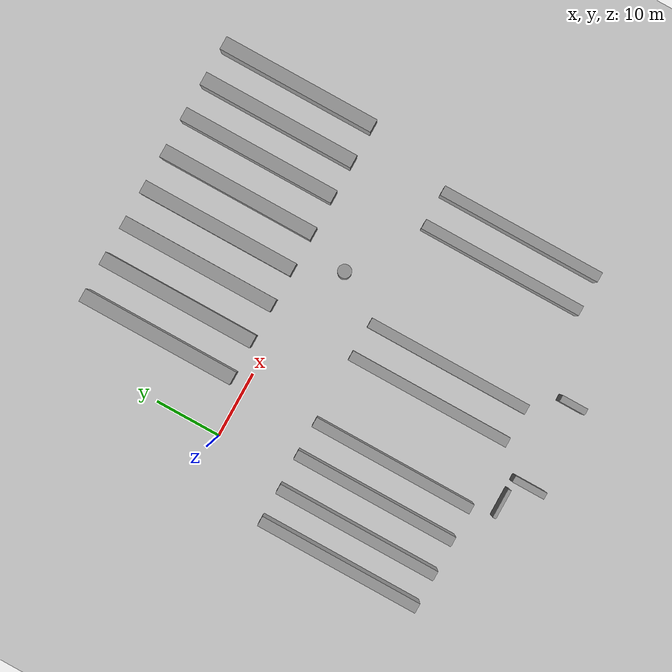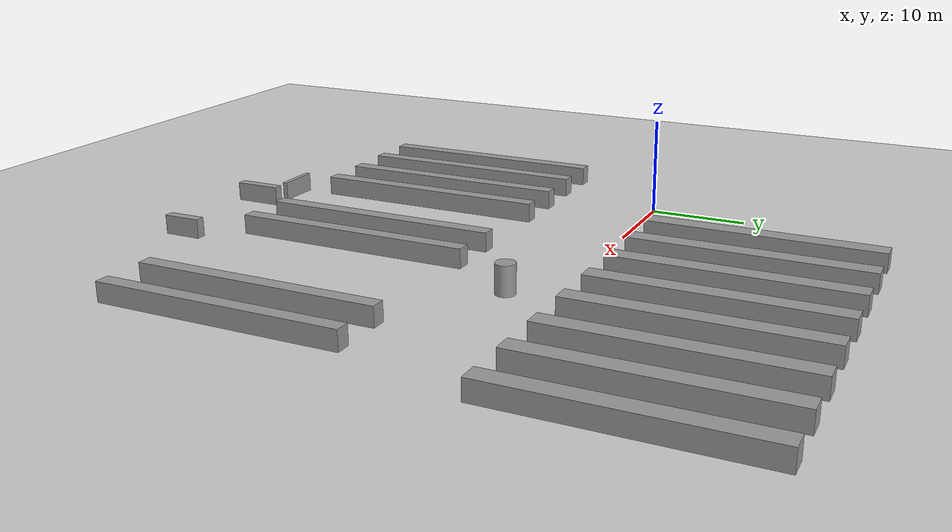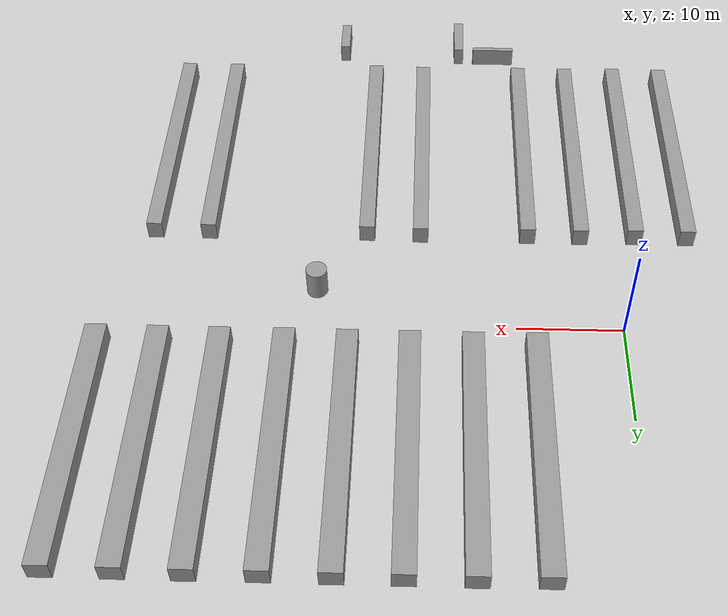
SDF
<sdf version="1.6">
 <world name="default">
  <model name="ground_plane">
   <static>1</static>
   <link name="link">
    <collision name="collision">
     <geometry><plane><normal>0 0 1</normal><size>120 120</size></plane></geometry>
     <surface>
      <contact><collide_bitmask>65535</collide_bitmask></contact>
      <friction><ode><mu>100</mu><mu2>50</mu2></ode></friction>
     </surface>
    </collision>
    <visual name="visual">
     <cast_shadows>0</cast_shadows>
     <geometry><plane><normal>0 0 1</normal><size>120 120</size></plane></geometry>
     <material>
      <script><uri>file://media/materials/scripts/gazebo.material</uri><name>Gazebo/Grey</name></script>
     </material>
    </visual>
   </link>
  </model>
  <model name="box8">
   <link name="link">
    <inertial>
     <mass>50</mass>
     <inertia><ixx>8.33333</ixx><ixy>0</ixy><ixz>0</ixz><iyy>8.33333</iyy><iyz>0</iyz><izz>8.33333</izz></inertia>
    </inertial>
    <pose>-0.565276 -1.46825 0.5 0 -0 0</pose>
    <gravity>0</gravity>
    <visual name="visual">
     <geometry><box><size>4.5 0.5 2</size></box></geometry>
     <material>
      <script><name>Gazebo/Grey</name><uri>file://media/materials/scripts/gazebo.material</uri></script>
      <shader type="pixel"><normal_map>__default__</normal_map></shader>
      <ambient>0.3 0.3 0.3 1</ambient>
      <diffuse>0.7 0.7 0.7 1</diffuse>
      <specular>0.01 0.01 0.01 1</specular>
      <emissive>0 0 0 1</emissive>
     </material>
    </visual>
    <collision name="collision">
     <geometry><box><size>4.5 0.5 2</size></box></geometry>
     <surface>
      <friction>
       <ode><mu>1</mu><mu2>1</mu2><fdir1>0 0 0</fdir1><slip1>0</slip1><slip2>0</slip2></ode>
       <torsional>
        <coefficient>1</coefficient>
        <patch_radius>0</patch_radius>
        <surface_radius>0</surface_radius>
        <use_patch_radius>1</use_patch_radius>
        <ode><slip>0</slip></ode>
       </torsional>
      </friction>
      <bounce><restitution_coefficient>0</restitution_coefficient><threshold>1e+06</threshold></bounce>
      <contact>
       <collide_without_contact>0</collide_without_contact>
       <collide_without_contact_bitmask>1</collide_without_contact_bitmask>
       <collide_bitmask>1</collide_bitmask>
       <ode>
        <soft_cfm>0</soft_cfm>
        <soft_erp>0.2</soft_erp>
        <kp>1e+13</kp>
        <kd>1</kd>
        <max_vel>0.01</max_vel>
        <min_depth>0</min_depth>
       </ode>
       <bullet>
        <split_impulse>1</split_impulse>
        <split_impulse_penetration_threshold>-0.01</split_impulse_penetration_threshold>
        <soft_cfm>0</soft_cfm>
        <soft_erp>0.2</soft_erp>
        <kp>1e+13</kp>
        <kd>1</kd>
       </bullet>
      </contact>
     </surface>
    </collision>
   </link>
   <static>0</static>
   <pose>11.7716 -37.6608 0.5 0 -0 0</pose>
  </model>
  <model name="box9">
   <link name="link">
    <inertial>
     <mass>50</mass>
     <inertia><ixx>8.33333</ixx><ixy>0</ixy><ixz>0</ixz><iyy>8.33333</iyy><iyz>0</iyz><izz>8.33333</izz></inertia>
    </inertial>
    <pose>-1.88715 -4.10766 0.5 0 -0 0</pose>
    <gravity>0</gravity>
    <visual name="visual">
     <geometry><box><size>1 5 2</size></box></geometry>
     <material>
      <script><name>Gazebo/Grey</name><uri>file://media/materials/scripts/gazebo.material</uri></script>
      <shader type="pixel"><normal_map>__default__</normal_map></shader>
      <ambient>0.3 0.3 0.3 1</ambient>
      <diffuse>0.7 0.7 0.7 1</diffuse>
      <specular>0.01 0.01 0.01 1</specular>
      <emissive>0 0 0 1</emissive>
     </material>
    </visual>
    <collision name="collision">
     <geometry><box><size>1 5 2</size></box></geometry>
     <surface>
      <friction>
       <ode><mu>1</mu><mu2>1</mu2><fdir1>0 0 0</fdir1><slip1>0</slip1><slip2>0</slip2></ode>
       <torsional>
        <coefficient>1</coefficient>
        <patch_radius>0</patch_radius>
        <surface_radius>0</surface_radius>
        <use_patch_radius>1</use_patch_radius>
        <ode><slip>0</slip></ode>
       </torsional>
      </friction>
      <bounce><restitution_coefficient>0</restitution_coefficient><threshold>1e+06</threshold></bounce>
      <contact>
       <collide_without_contact>0</collide_without_contact>
       <collide_without_contact_bitmask>1</collide_without_contact_bitmask>
       <collide_bitmask>1</collide_bitmask>
       <ode>
        <soft_cfm>0</soft_cfm>
        <soft_erp>0.2</soft_erp>
        <kp>1e+13</kp>
        <kd>1</kd>
        <max_vel>0.01</max_vel>
        <min_depth>0</min_depth>
       </ode>
       <bullet>
        <split_impulse>1</split_impulse>
        <split_impulse_penetration_threshold>-0.01</split_impulse_penetration_threshold>
        <soft_cfm>0</soft_cfm>
        <soft_erp>0.2</soft_erp>
        <kp>1e+13</kp>
        <kd>1</kd>
       </bullet>
      </contact>
     </surface>
    </collision>
   </link>
   <static>0</static>
   <pose>16.9596 -37.2833 0.5 0 -0 0</pose>
  </model>
  <model name="box10">
   <link name="link">
    <inertial>
     <mass>50</mass>
     <inertia><ixx>8.33333</ixx><ixy>0</ixy><ixz>0</ixz><iyy>8.33333</iyy><iyz>0</iyz><izz>8.33333</izz></inertia>
    </inertial>
    <pose>1.71263 -3.72257 0.5 0 -0 0</pose>
    <gravity>0</gravity>
    <visual name="visual">
     <geometry><box><size>1 4 2</size></box></geometry>
     <material>
      <script><name>Gazebo/Grey</name><uri>file://media/materials/scripts/gazebo.material</uri></script>
      <shader type="pixel"><normal_map>__default__</normal_map></shader>
      <ambient>0.3 0.3 0.3 1</ambient>
      <diffuse>0.7 0.7 0.7 1</diffuse>
      <specular>0.01 0.01 0.01 1</specular>
      <emissive>0 0 0 1</emissive>
     </material>
    </visual>
    <collision name="collision">
     <geometry><box><size>1 4 2</size></box></geometry>
     <surface>
      <friction>
       <ode><mu>1</mu><mu2>1</mu2><fdir1>0 0 0</fdir1><slip1>0</slip1><slip2>0</slip2></ode>
       <torsional>
        <coefficient>1</coefficient>
        <patch_radius>0</patch_radius>
        <surface_radius>0</surface_radius>
        <use_patch_radius>1</use_patch_radius>
        <ode><slip>0</slip></ode>
       </torsional>
      </friction>
      <bounce><restitution_coefficient>0</restitution_coefficient><threshold>1e+06</threshold></bounce>
      <contact>
       <collide_without_contact>0</collide_without_contact>
       <collide_without_contact_bitmask>1</collide_without_contact_bitmask>
       <collide_bitmask>1</collide_bitmask>
       <ode>
        <soft_cfm>0</soft_cfm>
        <soft_erp>0.2</soft_erp>
        <kp>1e+13</kp>
        <kd>1</kd>
        <max_vel>0.01</max_vel>
        <min_depth>0</min_depth>
       </ode>
       <bullet>
        <split_impulse>1</split_impulse>
        <split_impulse_penetration_threshold>-0.01</split_impulse_penetration_threshold>
        <soft_cfm>0</soft_cfm>
        <soft_erp>0.2</soft_erp>
        <kp>1e+13</kp>
        <kd>1</kd>
       </bullet>
      </contact>
     </surface>
    </collision>
   </link>
   <static>0</static>
   <pose>26.3188 -37.4827 0.5 0 -0 0</pose>
  </model>
  <model name="box30">
   <link name="link">
    <inertial>
     <mass>50</mass>
     <inertia><ixx>8.33333</ixx><ixy>0</ixy><ixz>0</ixz><iyy>8.33333</iyy><iyz>0</iyz><izz>8.33333</izz></inertia>
    </inertial>
    <pose>5.70963 -14.2059 0.5 0 -0 0</pose>
    <gravity>0</gravity>
    <visual name="visual">
     <geometry><box><size>2 24 2</size></box></geometry>
     <material>
      <script><name>Gazebo/Grey</name><uri>file://media/materials/scripts/gazebo.material</uri></script>
      <shader type="pixel"><normal_map>__default__</normal_map></shader>
      <ambient>0.3 0.3 0.3 1</ambient>
      <diffuse>0.7 0.7 0.7 1</diffuse>
      <specular>0.01 0.01 0.01 1</specular>
      <emissive>0 0 0 1</emissive>
     </material>
    </visual>
    <collision name="collision">
     <geometry><box><size>2 24 2</size></box></geometry>
     <surface>
      <friction>
       <ode><mu>1</mu><mu2>1</mu2><fdir1>0 0 0</fdir1><slip1>0</slip1><slip2>0</slip2></ode>
       <torsional>
        <coefficient>1</coefficient>
        <patch_radius>0</patch_radius>
        <surface_radius>0</surface_radius>
        <use_patch_radius>1</use_patch_radius>
        <ode><slip>0</slip></ode>
       </torsional>
      </friction>
      <bounce><restitution_coefficient>0</restitution_coefficient><threshold>1e+06</threshold></bounce>
      <contact>
       <collide_without_contact>0</collide_without_contact>
       <collide_without_contact_bitmask>1</collide_without_contact_bitmask>
       <collide_bitmask>1</collide_bitmask>
       <ode>
        <soft_cfm>0</soft_cfm>
        <soft_erp>0.2</soft_erp>
        <kp>1e+13</kp>
        <kd>1</kd>
        <max_vel>0.01</max_vel>
        <min_depth>0</min_depth>
       </ode>
       <bullet>
        <split_impulse>1</split_impulse>
        <split_impulse_penetration_threshold>-0.01</split_impulse_penetration_threshold>
        <soft_cfm>0</soft_cfm>
        <soft_erp>0.2</soft_erp>
        <kp>1e+13</kp>
        <kd>1</kd>
       </bullet>
      </contact>
     </surface>
    </collision>
   </link>
   <static>0</static>
   <pose>2.58309 28.1874 0.5 0 -0 0</pose>
  </model>
  <model name="box31">
   <link name="link">
    <inertial>
     <mass>50</mass>
     <inertia><ixx>8.33333</ixx><ixy>0</ixy><ixz>0</ixz><iyy>8.33333</iyy><iyz>0</iyz><izz>8.33333</izz></inertia>
    </inertial>
    <pose>5.70963 -14.2059 0.5 0 -0 0</pose>
    <gravity>0</gravity>
    <visual name="visual">
     <geometry><box><size>2 24 2</size></box></geometry>
     <material>
      <script><name>Gazebo/Grey</name><uri>file://media/materials/scripts/gazebo.material</uri></script>
      <shader type="pixel"><normal_map>__default__</normal_map></shader>
      <ambient>0.3 0.3 0.3 1</ambient>
      <diffuse>0.7 0.7 0.7 1</diffuse>
      <specular>0.01 0.01 0.01 1</specular>
      <emissive>0 0 0 1</emissive>
     </material>
    </visual>
    <collision name="collision">
     <geometry><box><size>2 24 2</size></box></geometry>
     <surface>
      <friction>
       <ode><mu>1</mu><mu2>1</mu2><fdir1>0 0 0</fdir1><slip1>0</slip1><slip2>0</slip2></ode>
       <torsional>
        <coefficient>1</coefficient>
        <patch_radius>0</patch_radius>
        <surface_radius>0</surface_radius>
        <use_patch_radius>1</use_patch_radius>
        <ode><slip>0</slip></ode>
       </torsional>
      </friction>
      <bounce><restitution_coefficient>0</restitution_coefficient><threshold>1e+06</threshold></bounce>
      <contact>
       <collide_without_contact>0</collide_without_contact>
       <collide_without_contact_bitmask>1</collide_without_contact_bitmask>
       <collide_bitmask>1</collide_bitmask>
       <ode>
        <soft_cfm>0</soft_cfm>
        <soft_erp>0.2</soft_erp>
        <kp>1e+13</kp>
        <kd>1</kd>
        <max_vel>0.01</max_vel>
        <min_depth>0</min_depth>
       </ode>
       <bullet>
        <split_impulse>1</split_impulse>
        <split_impulse_penetration_threshold>-0.01</split_impulse_penetration_threshold>
        <soft_cfm>0</soft_cfm>
        <soft_erp>0.2</soft_erp>
        <kp>1e+13</kp>
        <kd>1</kd>
       </bullet>
      </contact>
     </surface>
    </collision>
   </link>
   <static>0</static>
   <pose>8.38957 28.2413 0.5 0 -0 0</pose>
  </model>
  <model name="box32">
   <link name="link">
    <inertial>
     <mass>50</mass>
     <inertia><ixx>8.33333</ixx><ixy>0</ixy><ixz>0</ixz><iyy>8.33333</iyy><iyz>0</iyz><izz>8.33333</izz></inertia>
    </inertial>
    <pose>5.70963 -14.2059 0.5 0 -0 0</pose>
    <gravity>0</gravity>
    <visual name="visual">
     <geometry><box><size>2 24 2</size></box></geometry>
     <material>
      <script><name>Gazebo/Grey</name><uri>file://media/materials/scripts/gazebo.material</uri></script>
      <shader type="pixel"><normal_map>__default__</normal_map></shader>
      <ambient>0.3 0.3 0.3 1</ambient>
      <diffuse>0.7 0.7 0.7 1</diffuse>
      <specular>0.01 0.01 0.01 1</specular>
      <emissive>0 0 0 1</emissive>
     </material>
    </visual>
    <collision name="collision">
     <geometry><box><size>2 24 2</size></box></geometry>
     <surface>
      <friction>
       <ode><mu>1</mu><mu2>1</mu2><fdir1>0 0 0</fdir1><slip1>0</slip1><slip2>0</slip2></ode>
       <torsional>
        <coefficient>1</coefficient>
        <patch_radius>0</patch_radius>
        <surface_radius>0</surface_radius>
        <use_patch_radius>1</use_patch_radius>
        <ode><slip>0</slip></ode>
       </torsional>
      </friction>
      <bounce><restitution_coefficient>0</restitution_coefficient><threshold>1e+06</threshold></bounce>
      <contact>
       <collide_without_contact>0</collide_without_contact>
       <collide_without_contact_bitmask>1</collide_without_contact_bitmask>
       <collide_bitmask>1</collide_bitmask>
       <ode>
        <soft_cfm>0</soft_cfm>
        <soft_erp>0.2</soft_erp>
        <kp>1e+13</kp>
        <kd>1</kd>
        <max_vel>0.01</max_vel>
        <min_depth>0</min_depth>
       </ode>
       <bullet>
        <split_impulse>1</split_impulse>
        <split_impulse_penetration_threshold>-0.01</split_impulse_penetration_threshold>
        <soft_cfm>0</soft_cfm>
        <soft_erp>0.2</soft_erp>
        <kp>1e+13</kp>
        <kd>1</kd>
       </bullet>
      </contact>
     </surface>
    </collision>
   </link>
   <static>0</static>
   <pose>14.1473 28.2078 0.5 0 -0 0</pose>
  </model>
  <model name="box33">
   <link name="link">
    <inertial>
     <mass>50</mass>
     <inertia><ixx>8.33333</ixx><ixy>0</ixy><ixz>0</ixz><iyy>8.33333</iyy><iyz>0</iyz><izz>8.33333</izz></inertia>
    </inertial>
    <pose>5.70963 -14.2059 0.5 0 -0 0</pose>
    <gravity>0</gravity>
    <visual name="visual">
     <geometry><box><size>2 24 2</size></box></geometry>
     <material>
      <script><name>Gazebo/Grey</name><uri>file://media/materials/scripts/gazebo.material</uri></script>
      <shader type="pixel"><normal_map>__default__</normal_map></shader>
      <ambient>0.3 0.3 0.3 1</ambient>
      <diffuse>0.7 0.7 0.7 1</diffuse>
      <specular>0.01 0.01 0.01 1</specular>
      <emissive>0 0 0 1</emissive>
     </material>
    </visual>
    <collision name="collision">
     <geometry><box><size>2 24 2</size></box></geometry>
     <surface>
      <friction>
       <ode><mu>1</mu><mu2>1</mu2><fdir1>0 0 0</fdir1><slip1>0</slip1><slip2>0</slip2></ode>
       <torsional>
        <coefficient>1</coefficient>
        <patch_radius>0</patch_radius>
        <surface_radius>0</surface_radius>
        <use_patch_radius>1</use_patch_radius>
        <ode><slip>0</slip></ode>
       </torsional>
      </friction>
      <bounce><restitution_coefficient>0</restitution_coefficient><threshold>1e+06</threshold></bounce>
      <contact>
       <collide_without_contact>0</collide_without_contact>
       <collide_without_contact_bitmask>1</collide_without_contact_bitmask>
       <collide_bitmask>1</collide_bitmask>
       <ode>
        <soft_cfm>0</soft_cfm>
        <soft_erp>0.2</soft_erp>
        <kp>1e+13</kp>
        <kd>1</kd>
        <max_vel>0.01</max_vel>
        <min_depth>0</min_depth>
       </ode>
       <bullet>
        <split_impulse>1</split_impulse>
        <split_impulse_penetration_threshold>-0.01</split_impulse_penetration_threshold>
        <soft_cfm>0</soft_cfm>
        <soft_erp>0.2</soft_erp>
        <kp>1e+13</kp>
        <kd>1</kd>
       </bullet>
      </contact>
     </surface>
    </collision>
   </link>
   <static>0</static>
   <pose>19.8393 28.2026 0.5 0 -0 0</pose>
  </model>
  <model name="box34">
   <link name="link">
    <inertial>
     <mass>50</mass>
     <inertia><ixx>8.33333</ixx><ixy>0</ixy><ixz>0</ixz><iyy>8.33333</iyy><iyz>0</iyz><izz>8.33333</izz></inertia>
    </inertial>
    <pose>5.70963 -14.2059 0.5 0 -0 0</pose>
    <gravity>0</gravity>
    <visual name="visual">
     <geometry><box><size>2 24 2</size></box></geometry>
     <material>
      <script><name>Gazebo/Grey</name><uri>file://media/materials/scripts/gazebo.material</uri></script>
      <shader type="pixel"><normal_map>__default__</normal_map></shader>
      <ambient>0.3 0.3 0.3 1</ambient>
      <diffuse>0.7 0.7 0.7 1</diffuse>
      <specular>0.01 0.01 0.01 1</specular>
      <emissive>0 0 0 1</emissive>
     </material>
    </visual>
    <collision name="collision">
     <geometry><box><size>2 24 2</size></box></geometry>
     <surface>
      <friction>
       <ode><mu>1</mu><mu2>1</mu2><fdir1>0 0 0</fdir1><slip1>0</slip1><slip2>0</slip2></ode>
       <torsional>
        <coefficient>1</coefficient>
        <patch_radius>0</patch_radius>
        <surface_radius>0</surface_radius>
        <use_patch_radius>1</use_patch_radius>
        <ode><slip>0</slip></ode>
       </torsional>
      </friction>
      <bounce><restitution_coefficient>0</restitution_coefficient><threshold>1e+06</threshold></bounce>
      <contact>
       <collide_without_contact>0</collide_without_contact>
       <collide_without_contact_bitmask>1</collide_without_contact_bitmask>
       <collide_bitmask>1</collide_bitmask>
       <ode>
        <soft_cfm>0</soft_cfm>
        <soft_erp>0.2</soft_erp>
        <kp>1e+13</kp>
        <kd>1</kd>
        <max_vel>0.01</max_vel>
        <min_depth>0</min_depth>
       </ode>
       <bullet>
        <split_impulse>1</split_impulse>
        <split_impulse_penetration_threshold>-0.01</split_impulse_penetration_threshold>
        <soft_cfm>0</soft_cfm>
        <soft_erp>0.2</soft_erp>
        <kp>1e+13</kp>
        <kd>1</kd>
       </bullet>
      </contact>
     </surface>
    </collision>
   </link>
   <static>0</static>
   <pose>25.5992 28.1691 0.5 0 -0 0</pose>
  </model>
  <model name="box35">
   <link name="link">
    <inertial>
     <mass>50</mass>
     <inertia><ixx>8.33333</ixx><ixy>0</ixy><ixz>0</ixz><iyy>8.33333</iyy><iyz>0</iyz><izz>8.33333</izz></inertia>
    </inertial>
    <pose>5.70963 -14.2059 0.5 0 -0 0</pose>
    <gravity>0</gravity>
    <visual name="visual">
     <geometry><box><size>2 24 2</size></box></geometry>
     <material>
      <script><name>Gazebo/Grey</name><uri>file://media/materials/scripts/gazebo.material</uri></script>
      <shader type="pixel"><normal_map>__default__</normal_map></shader>
      <ambient>0.3 0.3 0.3 1</ambient>
      <diffuse>0.7 0.7 0.7 1</diffuse>
      <specular>0.01 0.01 0.01 1</specular>
      <emissive>0 0 0 1</emissive>
     </material>
    </visual>
    <collision name="collision">
     <geometry><box><size>2 24 2</size></box></geometry>
     <surface>
      <friction>
       <ode><mu>1</mu><mu2>1</mu2><fdir1>0 0 0</fdir1><slip1>0</slip1><slip2>0</slip2></ode>
       <torsional>
        <coefficient>1</coefficient>
        <patch_radius>0</patch_radius>
        <surface_radius>0</surface_radius>
        <use_patch_radius>1</use_patch_radius>
        <ode><slip>0</slip></ode>
       </torsional>
      </friction>
      <bounce><restitution_coefficient>0</restitution_coefficient><threshold>1e+06</threshold></bounce>
      <contact>
       <collide_without_contact>0</collide_without_contact>
       <collide_without_contact_bitmask>1</collide_without_contact_bitmask>
       <collide_bitmask>1</collide_bitmask>
       <ode>
        <soft_cfm>0</soft_cfm>
        <soft_erp>0.2</soft_erp>
        <kp>1e+13</kp>
        <kd>1</kd>
        <max_vel>0.01</max_vel>
        <min_depth>0</min_depth>
       </ode>
       <bullet>
        <split_impulse>1</split_impulse>
        <split_impulse_penetration_threshold>-0.01</split_impulse_penetration_threshold>
        <soft_cfm>0</soft_cfm>
        <soft_erp>0.2</soft_erp>
        <kp>1e+13</kp>
        <kd>1</kd>
       </bullet>
      </contact>
     </surface>
    </collision>
   </link>
   <static>0</static>
   <pose>31.4772 28.1941 0.5 0 -0 0</pose>
  </model>
  <model name="box36">
   <link name="link">
    <inertial>
     <mass>50</mass>
     <inertia><ixx>8.33333</ixx><ixy>0</ixy><ixz>0</ixz><iyy>8.33333</iyy><iyz>0</iyz><izz>8.33333</izz></inertia>
    </inertial>
    <pose>5.70963 -14.2059 0.5 0 -0 0</pose>
    <gravity>0</gravity>
    <visual name="visual">
     <geometry><box><size>2 24 2</size></box></geometry>
     <material>
      <script><name>Gazebo/Grey</name><uri>file://media/materials/scripts/gazebo.material</uri></script>
      <shader type="pixel"><normal_map>__default__</normal_map></shader>
      <ambient>0.3 0.3 0.3 1</ambient>
      <diffuse>0.7 0.7 0.7 1</diffuse>
      <specular>0.01 0.01 0.01 1</specular>
      <emissive>0 0 0 1</emissive>
     </material>
    </visual>
    <collision name="collision">
     <geometry><box><size>2 24 2</size></box></geometry>
     <surface>
      <friction>
       <ode><mu>1</mu><mu2>1</mu2><fdir1>0 0 0</fdir1><slip1>0</slip1><slip2>0</slip2></ode>
       <torsional>
        <coefficient>1</coefficient>
        <patch_radius>0</patch_radius>
        <surface_radius>0</surface_radius>
        <use_patch_radius>1</use_patch_radius>
        <ode><slip>0</slip></ode>
       </torsional>
      </friction>
      <bounce><restitution_coefficient>0</restitution_coefficient><threshold>1e+06</threshold></bounce>
      <contact>
       <collide_without_contact>0</collide_without_contact>
       <collide_without_contact_bitmask>1</collide_without_contact_bitmask>
       <collide_bitmask>1</collide_bitmask>
       <ode>
        <soft_cfm>0</soft_cfm>
        <soft_erp>0.2</soft_erp>
        <kp>1e+13</kp>
        <kd>1</kd>
        <max_vel>0.01</max_vel>
        <min_depth>0</min_depth>
       </ode>
       <bullet>
        <split_impulse>1</split_impulse>
        <split_impulse_penetration_threshold>-0.01</split_impulse_penetration_threshold>
        <soft_cfm>0</soft_cfm>
        <soft_erp>0.2</soft_erp>
        <kp>1e+13</kp>
        <kd>1</kd>
       </bullet>
      </contact>
     </surface>
    </collision>
   </link>
   <static>0</static>
   <pose>37.1169 28.1621 0.5 0 -0 0</pose>
  </model>
  <model name="box37">
   <link name="link">
    <inertial>
     <mass>50</mass>
     <inertia><ixx>8.33333</ixx><ixy>0</ixy><ixz>0</ixz><iyy>8.33333</iyy><iyz>0</iyz><izz>8.33333</izz></inertia>
    </inertial>
    <pose>5.70963 -14.2059 0.5 0 -0 0</pose>
    <gravity>0</gravity>
    <visual name="visual">
     <geometry><box><size>2 24 2</size></box></geometry>
     <material>
      <script><name>Gazebo/Grey</name><uri>file://media/materials/scripts/gazebo.material</uri></script>
      <shader type="pixel"><normal_map>__default__</normal_map></shader>
      <ambient>0.3 0.3 0.3 1</ambient>
      <diffuse>0.7 0.7 0.7 1</diffuse>
      <specular>0.01 0.01 0.01 1</specular>
      <emissive>0 0 0 1</emissive>
     </material>
    </visual>
    <collision name="collision">
     <geometry><box><size>2 24 2</size></box></geometry>
     <surface>
      <friction>
       <ode><mu>1</mu><mu2>1</mu2><fdir1>0 0 0</fdir1><slip1>0</slip1><slip2>0</slip2></ode>
       <torsional>
        <coefficient>1</coefficient>
        <patch_radius>0</patch_radius>
        <surface_radius>0</surface_radius>
        <use_patch_radius>1</use_patch_radius>
        <ode><slip>0</slip></ode>
       </torsional>
      </friction>
      <bounce><restitution_coefficient>0</restitution_coefficient><threshold>1e+06</threshold></bounce>
      <contact>
       <collide_without_contact>0</collide_without_contact>
       <collide_without_contact_bitmask>1</collide_without_contact_bitmask>
       <collide_bitmask>1</collide_bitmask>
       <ode>
        <soft_cfm>0</soft_cfm>
        <soft_erp>0.2</soft_erp>
        <kp>1e+13</kp>
        <kd>1</kd>
        <max_vel>0.01</max_vel>
        <min_depth>0</min_depth>
       </ode>
       <bullet>
        <split_impulse>1</split_impulse>
        <split_impulse_penetration_threshold>-0.01</split_impulse_penetration_threshold>
        <soft_cfm>0</soft_cfm>
        <soft_erp>0.2</soft_erp>
        <kp>1e+13</kp>
        <kd>1</kd>
       </bullet>
      </contact>
     </surface>
    </collision>
   </link>
   <static>0</static>
   <pose>42.8167 28.129 0.5 0 -0 0</pose>
  </model>
  <model name="box39">
   <link name="link">
    <inertial>
     <mass>50</mass>
     <inertia><ixx>8.33333</ixx><ixy>0</ixy><ixz>0</ixz><iyy>8.33333</iyy><iyz>0</iyz><izz>8.33333</izz></inertia>
    </inertial>
    <pose>-7.06778 -21.3021 0.5 0 -0 0</pose>
    <gravity>0</gravity>
    <visual name="visual">
     <geometry><box><size>1.5 25 2</size></box></geometry>
     <material>
      <script><name>Gazebo/Grey</name><uri>file://media/materials/scripts/gazebo.material</uri></script>
      <shader type="pixel"><normal_map>__default__</normal_map></shader>
      <ambient>0.3 0.3 0.3 1</ambient>
      <diffuse>0.7 0.7 0.7 1</diffuse>
      <specular>0.01 0.01 0.01 1</specular>
      <emissive>0 0 0 1</emissive>
     </material>
    </visual>
    <collision name="collision">
     <geometry><box><size>1.5 25 2</size></box></geometry>
     <surface>
      <friction>
       <ode><mu>1</mu><mu2>1</mu2><fdir1>0 0 0</fdir1><slip1>0</slip1><slip2>0</slip2></ode>
       <torsional>
        <coefficient>1</coefficient>
        <patch_radius>0</patch_radius>
        <surface_radius>0</surface_radius>
        <use_patch_radius>1</use_patch_radius>
        <ode><slip>0</slip></ode>
       </torsional>
      </friction>
      <bounce><restitution_coefficient>0</restitution_coefficient><threshold>1e+06</threshold></bounce>
      <contact>
       <collide_without_contact>0</collide_without_contact>
       <collide_without_contact_bitmask>1</collide_without_contact_bitmask>
       <collide_bitmask>1</collide_bitmask>
       <ode>
        <soft_cfm>0</soft_cfm>
        <soft_erp>0.2</soft_erp>
        <kp>1e+13</kp>
        <kd>1</kd>
        <max_vel>0.01</max_vel>
        <min_depth>0</min_depth>
       </ode>
       <bullet>
        <split_impulse>1</split_impulse>
        <split_impulse_penetration_threshold>-0.01</split_impulse_penetration_threshold>
        <soft_cfm>0</soft_cfm>
        <soft_erp>0.2</soft_erp>
        <kp>1e+13</kp>
        <kd>1</kd>
       </bullet>
      </contact>
     </surface>
    </collision>
   </link>
   <static>0</static>
   <pose>-0.08437 -2.0773 0.5 0 -0 0</pose>
  </model>
  <model name="box40">
   <link name="link">
    <inertial>
     <mass>50</mass>
     <inertia><ixx>8.33333</ixx><ixy>0</ixy><ixz>0</ixz><iyy>8.33333</iyy><iyz>0</iyz><izz>8.33333</izz></inertia>
    </inertial>
    <pose>-7.06778 -21.3021 0.5 0 -0 0</pose>
    <gravity>0</gravity>
    <visual name="visual">
     <geometry><box><size>1.5 25 2</size></box></geometry>
     <material>
      <script><name>Gazebo/Grey</name><uri>file://media/materials/scripts/gazebo.material</uri></script>
      <shader type="pixel"><normal_map>__default__</normal_map></shader>
      <ambient>0.3 0.3 0.3 1</ambient>
      <diffuse>0.7 0.7 0.7 1</diffuse>
      <specular>0.01 0.01 0.01 1</specular>
      <emissive>0 0 0 1</emissive>
     </material>
    </visual>
    <collision name="collision">
     <geometry><box><size>1.5 25 2</size></box></geometry>
     <surface>
      <friction>
       <ode><mu>1</mu><mu2>1</mu2><fdir1>0 0 0</fdir1><slip1>0</slip1><slip2>0</slip2></ode>
       <torsional>
        <coefficient>1</coefficient>
        <patch_radius>0</patch_radius>
        <surface_radius>0</surface_radius>
        <use_patch_radius>1</use_patch_radius>
        <ode><slip>0</slip></ode>
       </torsional>
      </friction>
      <bounce><restitution_coefficient>0</restitution_coefficient><threshold>1e+06</threshold></bounce>
      <contact>
       <collide_without_contact>0</collide_without_contact>
       <collide_without_contact_bitmask>1</collide_without_contact_bitmask>
       <collide_bitmask>1</collide_bitmask>
       <ode>
        <soft_cfm>0</soft_cfm>
        <soft_erp>0.2</soft_erp>
        <kp>1e+13</kp>
        <kd>1</kd>
        <max_vel>0.01</max_vel>
        <min_depth>0</min_depth>
       </ode>
       <bullet>
        <split_impulse>1</split_impulse>
        <split_impulse_penetration_threshold>-0.01</split_impulse_penetration_threshold>
        <soft_cfm>0</soft_cfm>
        <soft_erp>0.2</soft_erp>
        <kp>1e+13</kp>
        <kd>1</kd>
       </bullet>
      </contact>
     </surface>
    </collision>
   </link>
   <static>0</static>
   <pose>5.03204 -2.1074 0.5 0 -0 0</pose>
  </model>
  <model name="box41">
   <link name="link">
    <inertial>
     <mass>50</mass>
     <inertia><ixx>8.33333</ixx><ixy>0</ixy><ixz>0</ixz><iyy>8.33333</iyy><iyz>0</iyz><izz>8.33333</izz></inertia>
    </inertial>
    <pose>-7.06778 -21.3021 0.5 0 -0 0</pose>
    <gravity>0</gravity>
    <visual name="visual">
     <geometry><box><size>1.5 25 2</size></box></geometry>
     <material>
      <script><name>Gazebo/Grey</name><uri>file://media/materials/scripts/gazebo.material</uri></script>
      <shader type="pixel"><normal_map>__default__</normal_map></shader>
      <ambient>0.3 0.3 0.3 1</ambient>
      <diffuse>0.7 0.7 0.7 1</diffuse>
      <specular>0.01 0.01 0.01 1</specular>
      <emissive>0 0 0 1</emissive>
     </material>
    </visual>
    <collision name="collision">
     <geometry><box><size>1.5 25 2</size></box></geometry>
     <surface>
      <friction>
       <ode><mu>1</mu><mu2>1</mu2><fdir1>0 0 0</fdir1><slip1>0</slip1><slip2>0</slip2></ode>
       <torsional>
        <coefficient>1</coefficient>
        <patch_radius>0</patch_radius>
        <surface_radius>0</surface_radius>
        <use_patch_radius>1</use_patch_radius>
        <ode><slip>0</slip></ode>
       </torsional>
      </friction>
      <bounce><restitution_coefficient>0</restitution_coefficient><threshold>1e+06</threshold></bounce>
      <contact>
       <collide_without_contact>0</collide_without_contact>
       <collide_without_contact_bitmask>1</collide_without_contact_bitmask>
       <collide_bitmask>1</collide_bitmask>
       <ode>
        <soft_cfm>0</soft_cfm>
        <soft_erp>0.2</soft_erp>
        <kp>1e+13</kp>
        <kd>1</kd>
        <max_vel>0.01</max_vel>
        <min_depth>0</min_depth>
       </ode>
       <bullet>
        <split_impulse>1</split_impulse>
        <split_impulse_penetration_threshold>-0.01</split_impulse_penetration_threshold>
        <soft_cfm>0</soft_cfm>
        <soft_erp>0.2</soft_erp>
        <kp>1e+13</kp>
        <kd>1</kd>
       </bullet>
      </contact>
     </surface>
    </collision>
   </link>
   <static>0</static>
   <pose>10.3827 -1.9839 0.5 0 -0 0</pose>
  </model>
  <model name="box42">
   <link name="link">
    <inertial>
     <mass>50</mass>
     <inertia><ixx>8.33333</ixx><ixy>0</ixy><ixz>0</ixz><iyy>8.33333</iyy><iyz>0</iyz><izz>8.33333</izz></inertia>
    </inertial>
    <pose>-7.06778 -21.3021 0.5 0 -0 0</pose>
    <gravity>0</gravity>
    <visual name="visual">
     <geometry><box><size>1.5 25 2</size></box></geometry>
     <material>
      <script><name>Gazebo/Grey</name><uri>file://media/materials/scripts/gazebo.material</uri></script>
      <shader type="pixel"><normal_map>__default__</normal_map></shader>
      <ambient>0.3 0.3 0.3 1</ambient>
      <diffuse>0.7 0.7 0.7 1</diffuse>
      <specular>0.01 0.01 0.01 1</specular>
      <emissive>0 0 0 1</emissive>
     </material>
    </visual>
    <collision name="collision">
     <geometry><box><size>1.5 25 2</size></box></geometry>
     <surface>
      <friction>
       <ode><mu>1</mu><mu2>1</mu2><fdir1>0 0 0</fdir1><slip1>0</slip1><slip2>0</slip2></ode>
       <torsional>
        <coefficient>1</coefficient>
        <patch_radius>0</patch_radius>
        <surface_radius>0</surface_radius>
        <use_patch_radius>1</use_patch_radius>
        <ode><slip>0</slip></ode>
       </torsional>
      </friction>
      <bounce><restitution_coefficient>0</restitution_coefficient><threshold>1e+06</threshold></bounce>
      <contact>
       <collide_without_contact>0</collide_without_contact>
       <collide_without_contact_bitmask>1</collide_without_contact_bitmask>
       <collide_bitmask>1</collide_bitmask>
       <ode>
        <soft_cfm>0</soft_cfm>
        <soft_erp>0.2</soft_erp>
        <kp>1e+13</kp>
        <kd>1</kd>
        <max_vel>0.01</max_vel>
        <min_depth>0</min_depth>
       </ode>
       <bullet>
        <split_impulse>1</split_impulse>
        <split_impulse_penetration_threshold>-0.01</split_impulse_penetration_threshold>
        <soft_cfm>0</soft_cfm>
        <soft_erp>0.2</soft_erp>
        <kp>1e+13</kp>
        <kd>1</kd>
       </bullet>
      </contact>
     </surface>
    </collision>
   </link>
   <static>0</static>
   <pose>15.577 -2.0126 0.5 0 -0 0</pose>
  </model>
  <model name="box43">
   <link name="link">
    <inertial>
     <mass>50</mass>
     <inertia><ixx>8.33333</ixx><ixy>0</ixy><ixz>0</ixz><iyy>8.33333</iyy><iyz>0</iyz><izz>8.33333</izz></inertia>
    </inertial>
    <pose>-7.06778 -21.3021 0.5 0 -0 0</pose>
    <gravity>0</gravity>
    <visual name="visual">
     <geometry><box><size>1.5 25 2</size></box></geometry>
     <material>
      <script><name>Gazebo/Grey</name><uri>file://media/materials/scripts/gazebo.material</uri></script>
      <shader type="pixel"><normal_map>__default__</normal_map></shader>
      <ambient>0.3 0.3 0.3 1</ambient>
      <diffuse>0.7 0.7 0.7 1</diffuse>
      <specular>0.01 0.01 0.01 1</specular>
      <emissive>0 0 0 1</emissive>
     </material>
    </visual>
    <collision name="collision">
     <geometry><box><size>1.5 25 2</size></box></geometry>
     <surface>
      <friction>
       <ode><mu>1</mu><mu2>1</mu2><fdir1>0 0 0</fdir1><slip1>0</slip1><slip2>0</slip2></ode>
       <torsional>
        <coefficient>1</coefficient>
        <patch_radius>0</patch_radius>
        <surface_radius>0</surface_radius>
        <use_patch_radius>1</use_patch_radius>
        <ode><slip>0</slip></ode>
       </torsional>
      </friction>
      <bounce><restitution_coefficient>0</restitution_coefficient><threshold>1e+06</threshold></bounce>
      <contact>
       <collide_without_contact>0</collide_without_contact>
       <collide_without_contact_bitmask>1</collide_without_contact_bitmask>
       <collide_bitmask>1</collide_bitmask>
       <ode>
        <soft_cfm>0</soft_cfm>
        <soft_erp>0.2</soft_erp>
        <kp>1e+13</kp>
        <kd>1</kd>
        <max_vel>0.01</max_vel>
        <min_depth>0</min_depth>
       </ode>
       <bullet>
        <split_impulse>1</split_impulse>
        <split_impulse_penetration_threshold>-0.01</split_impulse_penetration_threshold>
        <soft_cfm>0</soft_cfm>
        <soft_erp>0.2</soft_erp>
        <kp>1e+13</kp>
        <kd>1</kd>
       </bullet>
      </contact>
     </surface>
    </collision>
   </link>
   <static>0</static>
   <pose>26.1228 -1.9398 0.5 0 -0 0</pose>
  </model>
  <model name="box44">
   <link name="link">
    <inertial>
     <mass>50</mass>
     <inertia><ixx>8.33333</ixx><ixy>0</ixy><ixz>0</ixz><iyy>8.33333</iyy><iyz>0</iyz><izz>8.33333</izz></inertia>
    </inertial>
    <pose>-7.06778 -21.3021 0.5 0 -0 0</pose>
    <gravity>0</gravity>
    <visual name="visual">
     <geometry><box><size>1.5 25 2</size></box></geometry>
     <material>
      <script><name>Gazebo/Grey</name><uri>file://media/materials/scripts/gazebo.material</uri></script>
      <shader type="pixel"><normal_map>__default__</normal_map></shader>
      <ambient>0.3 0.3 0.3 1</ambient>
      <diffuse>0.7 0.7 0.7 1</diffuse>
      <specular>0.01 0.01 0.01 1</specular>
      <emissive>0 0 0 1</emissive>
     </material>
    </visual>
    <collision name="collision">
     <geometry><box><size>1.5 25 2</size></box></geometry>
     <surface>
      <friction>
       <ode><mu>1</mu><mu2>1</mu2><fdir1>0 0 0</fdir1><slip1>0</slip1><slip2>0</slip2></ode>
       <torsional>
        <coefficient>1</coefficient>
        <patch_radius>0</patch_radius>
        <surface_radius>0</surface_radius>
        <use_patch_radius>1</use_patch_radius>
        <ode><slip>0</slip></ode>
       </torsional>
      </friction>
      <bounce><restitution_coefficient>0</restitution_coefficient><threshold>1e+06</threshold></bounce>
      <contact>
       <collide_without_contact>0</collide_without_contact>
       <collide_without_contact_bitmask>1</collide_without_contact_bitmask>
       <collide_bitmask>1</collide_bitmask>
       <ode>
        <soft_cfm>0</soft_cfm>
        <soft_erp>0.2</soft_erp>
        <kp>1e+13</kp>
        <kd>1</kd>
        <max_vel>0.01</max_vel>
        <min_depth>0</min_depth>
       </ode>
       <bullet>
        <split_impulse>1</split_impulse>
        <split_impulse_penetration_threshold>-0.01</split_impulse_penetration_threshold>
        <soft_cfm>0</soft_cfm>
        <soft_erp>0.2</soft_erp>
        <kp>1e+13</kp>
        <kd>1</kd>
       </bullet>
      </contact>
     </surface>
    </collision>
   </link>
   <static>0</static>
   <pose>31.3972 -2.0492 0.5 0 -0 0</pose>
  </model>
  <model name="box45">
   <link name="link">
    <inertial>
     <mass>50</mass>
     <inertia><ixx>8.33333</ixx><ixy>0</ixy><ixz>0</ixz><iyy>8.33333</iyy><iyz>0</iyz><izz>8.33333</izz></inertia>
    </inertial>
    <pose>-7.06778 -21.3021 0.5 0 -0 0</pose>
    <gravity>0</gravity>
    <visual name="visual">
     <geometry><box><size>1.5 25 2</size></box></geometry>
     <material>
      <script><name>Gazebo/Grey</name><uri>file://media/materials/scripts/gazebo.material</uri></script>
      <shader type="pixel"><normal_map>__default__</normal_map></shader>
      <ambient>0.3 0.3 0.3 1</ambient>
      <diffuse>0.7 0.7 0.7 1</diffuse>
      <specular>0.01 0.01 0.01 1</specular>
      <emissive>0 0 0 1</emissive>
     </material>
    </visual>
    <collision name="collision">
     <geometry><box><size>1.5 25 2</size></box></geometry>
     <surface>
      <friction>
       <ode><mu>1</mu><mu2>1</mu2><fdir1>0 0 0</fdir1><slip1>0</slip1><slip2>0</slip2></ode>
       <torsional>
        <coefficient>1</coefficient>
        <patch_radius>0</patch_radius>
        <surface_radius>0</surface_radius>
        <use_patch_radius>1</use_patch_radius>
        <ode><slip>0</slip></ode>
       </torsional>
      </friction>
      <bounce><restitution_coefficient>0</restitution_coefficient><threshold>1e+06</threshold></bounce>
      <contact>
       <collide_without_contact>0</collide_without_contact>
       <collide_without_contact_bitmask>1</collide_without_contact_bitmask>
       <collide_bitmask>1</collide_bitmask>
       <ode>
        <soft_cfm>0</soft_cfm>
        <soft_erp>0.2</soft_erp>
        <kp>1e+13</kp>
        <kd>1</kd>
        <max_vel>0.01</max_vel>
        <min_depth>0</min_depth>
       </ode>
       <bullet>
        <split_impulse>1</split_impulse>
        <split_impulse_penetration_threshold>-0.01</split_impulse_penetration_threshold>
        <soft_cfm>0</soft_cfm>
        <soft_erp>0.2</soft_erp>
        <kp>1e+13</kp>
        <kd>1</kd>
       </bullet>
      </contact>
     </surface>
    </collision>
   </link>
   <static>0</static>
   <pose>47.0554 -1.9753 0.5 0 -0 0</pose>
  </model>
  <model name="box46">
   <link name="link">
    <inertial>
     <mass>50</mass>
     <inertia><ixx>8.33333</ixx><ixy>0</ixy><ixz>0</ixz><iyy>8.33333</iyy><iyz>0</iyz><izz>8.33333</izz></inertia>
    </inertial>
    <pose>-7.06778 -21.3021 0.5 0 -0 0</pose>
    <gravity>0</gravity>
    <visual name="visual">
     <geometry><box><size>1.5 25 2</size></box></geometry>
     <material>
      <script><name>Gazebo/Grey</name><uri>file://media/materials/scripts/gazebo.material</uri></script>
      <shader type="pixel"><normal_map>__default__</normal_map></shader>
      <ambient>0.3 0.3 0.3 1</ambient>
      <diffuse>0.7 0.7 0.7 1</diffuse>
      <specular>0.01 0.01 0.01 1</specular>
      <emissive>0 0 0 1</emissive>
     </material>
    </visual>
    <collision name="collision">
     <geometry><box><size>1.5 25 2</size></box></geometry>
     <surface>
      <friction>
       <ode><mu>1</mu><mu2>1</mu2><fdir1>0 0 0</fdir1><slip1>0</slip1><slip2>0</slip2></ode>
       <torsional>
        <coefficient>1</coefficient>
        <patch_radius>0</patch_radius>
        <surface_radius>0</surface_radius>
        <use_patch_radius>1</use_patch_radius>
        <ode><slip>0</slip></ode>
       </torsional>
      </friction>
      <bounce><restitution_coefficient>0</restitution_coefficient><threshold>1e+06</threshold></bounce>
      <contact>
       <collide_without_contact>0</collide_without_contact>
       <collide_without_contact_bitmask>1</collide_without_contact_bitmask>
       <collide_bitmask>1</collide_bitmask>
       <ode>
        <soft_cfm>0</soft_cfm>
        <soft_erp>0.2</soft_erp>
        <kp>1e+13</kp>
        <kd>1</kd>
        <max_vel>0.01</max_vel>
        <min_depth>0</min_depth>
       </ode>
       <bullet>
        <split_impulse>1</split_impulse>
        <split_impulse_penetration_threshold>-0.01</split_impulse_penetration_threshold>
        <soft_cfm>0</soft_cfm>
        <soft_erp>0.2</soft_erp>
        <kp>1e+13</kp>
        <kd>1</kd>
       </bullet>
      </contact>
     </surface>
    </collision>
   </link>
   <static>0</static>
   <pose>52.4083 -2.0068 0.5 0 -0 0</pose>
  </model>
  <model name="cylinder1">
   <link name="link">
    <inertial>
     <mass>50</mass>
     <inertia><ixx>7.29167</ixx><ixy>0</ixy><ixz>0</ixz><iyy>7.29167</iyy><iyz>0</iyz><izz>6.25</izz></inertia>
    </inertial>
    <pose>-1.58271 2.68767 0.9 0 -0 0</pose>
    <visual name="visual">
     <geometry><cylinder><radius>1</radius><length>3</length></cylinder></geometry>
     <material>
      <script><name>Gazebo/Grey</name><uri>file://media/materials/scripts/gazebo.material</uri></script>
      <shader type="pixel"><normal_map>__default__</normal_map></shader>
      <ambient>0.3 0.3 0.3 1</ambient>
      <diffuse>0.7 0.7 0.7 1</diffuse>
      <specular>0.01 0.01 0.01 1</specular>
      <emissive>0 0 0 1</emissive>
     </material>
    </visual>
    <collision name="collision">
     <geometry><cylinder><radius>1</radius><length>3</length></cylinder></geometry>
     <surface>
      <friction>
       <ode><mu>1</mu><mu2>1</mu2><fdir1>0 0 0</fdir1><slip1>0</slip1><slip2>0</slip2></ode>
       <torsional>
        <coefficient>1</coefficient>
        <patch_radius>0</patch_radius>
        <surface_radius>0</surface_radius>
        <use_patch_radius>1</use_patch_radius>
        <ode><slip>0</slip></ode>
       </torsional>
      </friction>
      <bounce><restitution_coefficient>0</restitution_coefficient><threshold>1e+06</threshold></bounce>
      <contact>
       <collide_without_contact>0</collide_without_contact>
       <collide_without_contact_bitmask>1</collide_without_contact_bitmask>
       <collide_bitmask>1</collide_bitmask>
       <ode>
        <soft_cfm>0</soft_cfm>
        <soft_erp>0.2</soft_erp>
        <kp>1e+13</kp>
        <kd>1</kd>
        <max_vel>0.01</max_vel>
        <min_depth>0</min_depth>
       </ode>
       <bullet>
        <split_impulse>1</split_impulse>
        <split_impulse_penetration_threshold>-0.01</split_impulse_penetration_threshold>
        <soft_cfm>0</soft_cfm>
        <soft_erp>0.2</soft_erp>
        <kp>1e+13</kp>
        <kd>1</kd>
       </bullet>
      </contact>
     </surface>
    </collision>
   </link>
   <static>0</static>
   <pose>30.3856 -7.04541 0.5 0 -0 0</pose>
  </model>
 </world>
</sdf>
